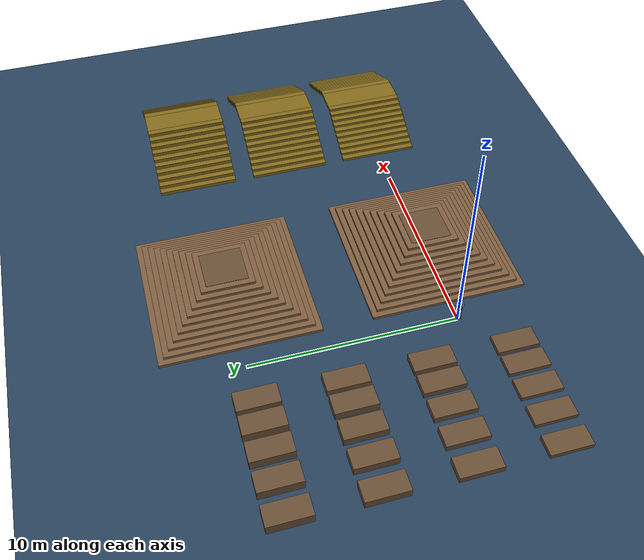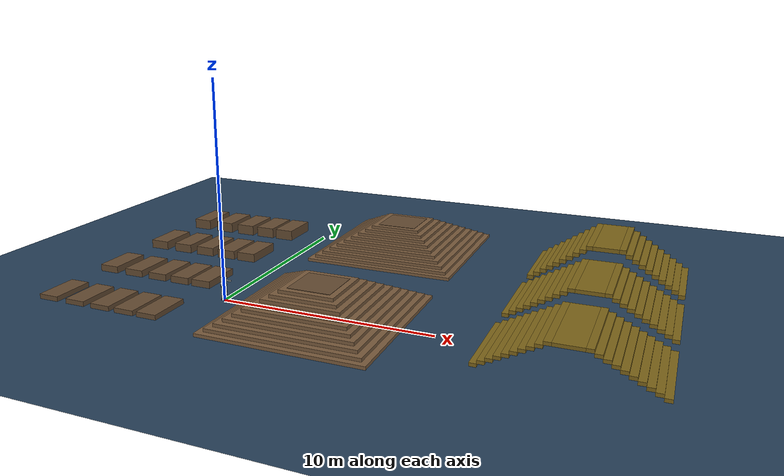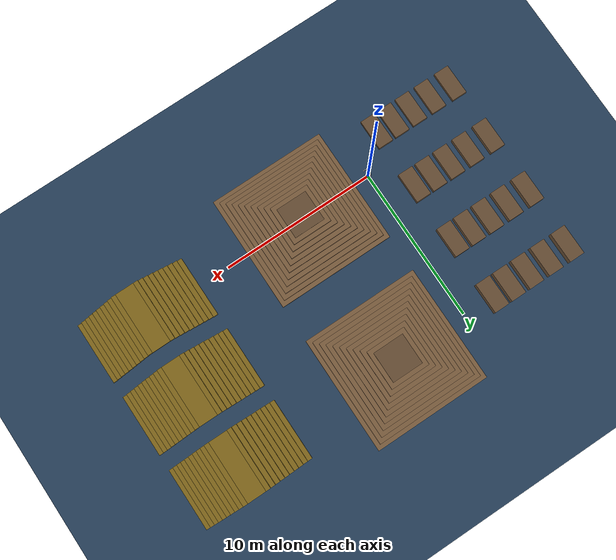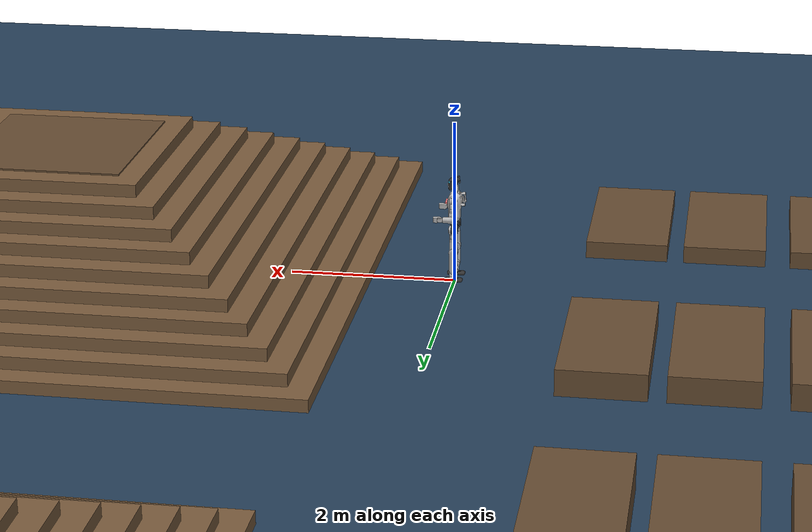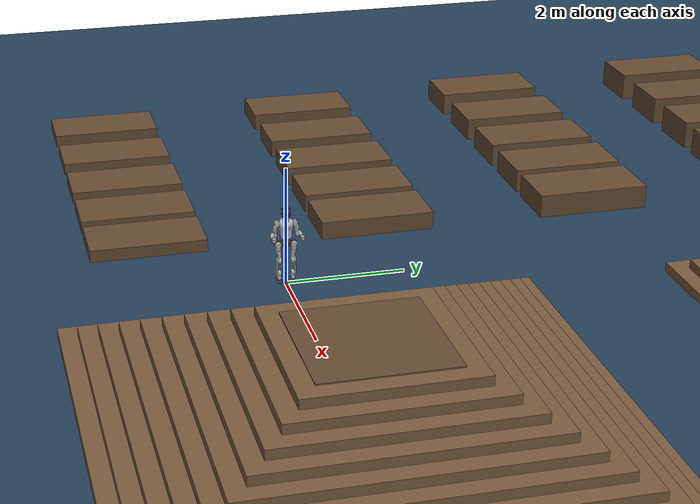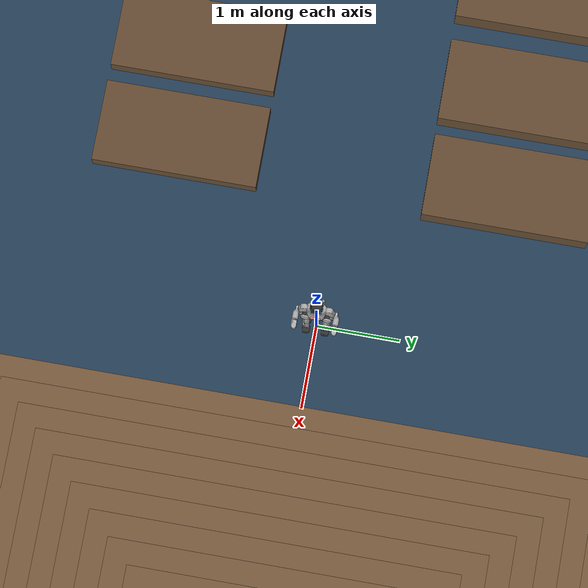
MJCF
<mujoco model="E1 12dof parkour scene">
  <include file="E1_12dof.xml"/>
  <include file="terrain.xml"/>

  <statistic center="0 0 0.8" extent="8"/>

  <visual>
    <headlight diffuse="0.85 0.85 0.85" ambient="0.55 0.55 0.55"
               specular="0.15 0.15 0.15"/>
    <rgba haze="0.55 0.65 0.75 1"/>
    <global azimuth="120" elevation="-20"/>
  </visual>

  <asset>
    <texture type="skybox" builtin="gradient" rgb1="0.65 0.78 0.95"
             rgb2="0.18 0.25 0.35"
             width="512" height="3072"/>
  </asset>

  <worldbody>
    <light name="sun" pos="0 -4 10" dir="0.25 0.15 -1"
           directional="true" castshadow="false"
           diffuse="0.9 0.9 0.9" ambient="0.0 0.0 0.0"
           specular="0.1 0.1 0.1"/>
  </worldbody>
</mujoco>

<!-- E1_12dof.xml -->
<mujoco model="E1_12dof">
  <compiler angle="radian" meshdir="../meshes/"/>

  <default>
    <default class="e1">
      <geom contype="0" conaffinity="0"/>
      <joint frictionloss="0.01" damping="0.01"/>

      <default class="hip">
        <default class="hip_pitch">
          <joint axis="0 1 0" range="-2.5307 2.8798" actuatorfrcrange="-120 120" armature="0.01"/>
        </default>
        <default class="hip_roll">
          <joint axis="1 0 0" actuatorfrcrange="-120 120" armature="0.01"/>
        </default>
        <default class="hip_yaw">
          <joint axis="0 0 1" range="-2.0944 2.0944" actuatorfrcrange="-36 36" armature="0.01"/>
        </default>
      </default>
      <default class="knee">
        <joint axis="0 1 0" range="0 2.2689" actuatorfrcrange="-120 120" armature="0.01"/>
      </default>
      <default class="ankle">
        <default class="ankle_pitch">
          <joint axis="0 1 0" range="-0.5236 0.5236" actuatorfrcrange="-36 36" armature="0.01"/>
        </default>
        <default class="ankle_roll">
          <joint axis="1 0 0" range="-1.5708 1.5708" actuatorfrcrange="-30 30" armature="0.01"/>
        </default>
      </default>
      <default class="visual">
        <geom group="2" type="mesh" density="0" material="silver"/>
      </default>
      <default class="collision">
        <geom group="3" type="mesh" rgba=".2 .6 .2 .3" contype="1" conaffinity="1"/>
        <default class="foot_capsule">
          <geom type="capsule" size="0.01"/>
        </default>
      </default>
    </default>
  </default>

  <asset>
    <material name="silver" rgba="0.7 0.7 0.7 1"/>
    <material name="black" rgba="0.2 0.2 0.2 1"/>

    <mesh name="pelvis" file="pelvis.STL"/>
    <mesh name="left_hip_pitch_link_v1" file="left_hip_pitch_link_v1.STL"/>
    <mesh name="left_hip_roll_link_v1" file="left_hip_roll_link_v1.STL"/>
    <mesh name="left_hip_yaw_link" file="left_hip_yaw_link.STL"/>
    <mesh name="left_knee_link" file="left_knee_link.STL"/>
    <mesh name="left_ankle_pitch_link" file="left_ankle_pitch_link.STL"/>
    <mesh name="left_ankle_roll_link_v1_2" file="left_ankle_roll_link_v1_2.STL"/>
    <mesh name="right_hip_pitch_link_v1" file="right_hip_pitch_link_v1.STL"/>
    <mesh name="right_hip_roll_link_v1" file="right_hip_roll_link_v1.STL"/>
    <mesh name="right_hip_yaw_link" file="right_hip_yaw_link.STL"/>
    <mesh name="right_knee_link" file="right_knee_link.STL"/>
    <mesh name="right_ankle_pitch_link" file="right_ankle_pitch_link.STL"/>
    <mesh name="right_ankle_roll_link_v1_2" file="right_ankle_roll_link_v1_2.STL"/>
    <mesh name="torso_link" file="torso_link.STL"/>
    <mesh name="left_shoulder_pitch_link" file="left_shoulder_pitch_link.STL"/>
    <mesh name="left_shoulder_roll_link" file="left_shoulder_roll_link.STL"/>
    <mesh name="left_shoulder_yaw_link" file="left_shoulder_yaw_link.STL"/>
    <mesh name="left_elbow_link" file="left_elbow_link.STL"/>
    <mesh name="left_wrist_roll_link" file="left_wrist_roll_link.STL"/>
    <mesh name="left_wrist_pitch_link" file="left_wrist_pitch_link.STL"/>
    <mesh name="right_shoulder_pitch_link" file="right_shoulder_pitch_link.STL"/>
    <mesh name="right_shoulder_roll_link" file="right_shoulder_roll_link.STL"/>
    <mesh name="right_shoulder_yaw_link" file="right_shoulder_yaw_link.STL"/>
    <mesh name="right_elbow_link" file="right_elbow_link.STL"/>
    <mesh name="right_wrist_roll_link" file="right_wrist_roll_link.STL"/>
    <mesh name="right_wrist_pitch_link" file="right_wrist_pitch_link.STL"/>
    <mesh name="head_pitch_link" file="head_pitch_link.STL"/>
    <mesh name="head_yaw_link" file="head_yaw_link.STL"/>
  </asset>

  <worldbody>
    <body name="pelvis" pos="0 0 0.715" childclass="e1">
      <inertial pos="-2.026e-05 0 0.0250193" quat="1 -1.77058e-05 -6.2652e-05 0.000906207" mass="3.6" diaginertia="0.0112704 0.00928407 0.00672158"/>
      <freejoint name="floating_base_joint"/>
      <geom class="visual" material="black" mesh="pelvis"/>
      <geom class="visual" mesh="pelvis"/>
      <!-- Primitive collision geometry keeps height-field contacts cheap and stable.
           Visual meshes and inertial properties remain unchanged. -->
      <geom name="pelvis_collision" class="collision" type="capsule" size="0.055" fromto="0 0 -0.005 0 0 0.065"/>
      <body name="left_hip_pitch_link" pos="0 0.0575 0">
        <inertial pos="-0.00088321 0.00557735 0.00140978" quat="0.775267 0.629946 -0.0078282 0.0454583" mass="1.334" diaginertia="0.00189368 0.00156703 0.00119457"/>
        <joint name="left_hip_pitch_joint" class="hip_pitch"/>
        <geom class="visual" material="black" mesh="left_hip_pitch_link_v1"/>
        <body name="left_hip_roll_link" pos="0 0.0725 -0.012">
          <inertial pos="-0.00054795 0.00928439 -0.070913" quat="0.72708 0.0123078 0.0971982 0.679526" mass="0.981" diaginertia="0.00140293 0.0012261 0.000954215"/>
          <joint name="left_hip_roll_joint" class="hip_roll" range="-0.5236 3.1416"/>
          <geom class="visual" mesh="left_hip_roll_link_v1"/>
          <geom name="left_hip_roll_collision" class="collision" type="capsule" size="0.045" fromto="0 0 -0.055 0 0 0.006"/>
          <body name="left_hip_yaw_link" pos="0 0 -0.106">
            <inertial pos="-8.81e-06 -0.00845833 -0.163113" quat="0.707299 -0.00656895 0.00682479 0.706851" mass="1.56" diaginertia="0.00493085 0.00429472 0.00135114"/>
            <joint name="left_hip_yaw_joint" class="hip_yaw"/>
            <geom class="visual" mesh="left_hip_yaw_link"/>
            <geom name="left_thigh_collision" class="collision" type="capsule" size="0.050" fromto="0 0 -0.187 0 0 -0.042"/>
            <body name="left_knee_link" pos="0 0 -0.182">
              <inertial pos="-0.00054127 0.020434 -0.100513" quat="0.710429 -0.000848428 0.00238427 0.703764" mass="0.389" diaginertia="0.00417321 0.00390613 0.000296172"/>
              <joint name="left_knee_joint" class="knee"/>
              <geom class="visual" mesh="left_knee_link"/>
              <geom name="left_shank_collision" class="collision" type="capsule" size="0.045" fromto="0 0 -0.225 0 0 0.003"/>
              <body name="left_ankle_pitch_link" pos="0 0 -0.23">
                <inertial pos="0.00011592 -0.00958151 -0.0284272" quat="0.705154 0.0494053 -0.049277 0.705612" mass="1.333" diaginertia="0.00253878 0.00227413 0.000815969"/>
                <joint name="left_ankle_pitch_joint" class="ankle_pitch"/>
                <geom class="visual" mesh="left_ankle_pitch_link"/>
                <body name="left_ankle_roll_link" pos="0 -0.016 -0.07">
                  <inertial pos="-0.00176848 0 -0.0465728" quat="0 0.706212 0 0.708" mass="0.578" diaginertia="0.0023466 0.00219847 0.000444688"/>
                  <joint name="left_ankle_roll_joint" class="ankle_roll"/>
                  <site name="left_foot_height_scan" pos="0 0 0" size="0.005" rgba="0 0 0 0"/>
                  <geom class="visual" material="black" mesh="left_ankle_roll_link_v1_2"/>
                  <geom name="left_foot1_collision" class="foot_capsule" fromto="-0.097 -0.037 -0.0578 0.097 -0.037 -0.0578"/>
                  <geom name="left_foot2_collision" class="foot_capsule" fromto="-0.097 -0.025 -0.0578 0.097 -0.025 -0.0578"/>
                  <geom name="left_foot3_collision" class="foot_capsule" fromto="-0.097 -0.0125 -0.0578 0.097 -0.0125 -0.0578"/>
                  <geom name="left_foot4_collision" class="foot_capsule" fromto="-0.097 0 -0.0578 0.097 0 -0.0578"/>
                  <geom name="left_foot5_collision" class="foot_capsule" fromto="-0.097 0.0125 -0.0578 0.097 0.0125 -0.0578"/>
                  <geom name="left_foot6_collision" class="foot_capsule" fromto="-0.097 0.025 -0.0578 0.097 0.025 -0.0578"/>
                  <geom name="left_foot7_collision" class="foot_capsule" fromto="-0.097 0.037 -0.0578 0.097 0.037 -0.0578"/>
                </body>
              </body>
            </body>
          </body>
        </body>
      </body>
      <body name="right_hip_pitch_link" pos="0 -0.0575 0">
        <inertial pos="-0.00088321 -0.00557735 0.00140978" quat="0.629946 0.775267 -0.0454583 0.0078282" mass="1.334" diaginertia="0.00189368 0.00156703 0.00119457"/>
        <joint name="right_hip_pitch_joint" class="hip_pitch"/>
        <geom class="visual" material="black" mesh="right_hip_pitch_link_v1"/>
        <body name="right_hip_roll_link" pos="0 -0.0725 -0.012">
          <inertial pos="-0.00054795 -0.00928439 -0.070913" quat="0.679526 0.0971982 0.0123078 0.72708" mass="0.981" diaginertia="0.00140293 0.0012261 0.000954215"/>
          <joint name="right_hip_roll_joint" class="hip_roll" range="-3.1416 0.5236"/>
          <geom class="visual" mesh="right_hip_roll_link_v1"/>
          <geom name="right_hip_roll_collision" class="collision" type="capsule" size="0.045" fromto="0 0 -0.055 0 0 0.006"/>
          <body name="right_hip_yaw_link" pos="0 0 -0.106">
            <inertial pos="8.81e-06 0.00845833 -0.163113" quat="0.707267 0.00689281 -0.00650074 0.706883" mass="1.561" diaginertia="0.00493085 0.00429472 0.00135113"/>
            <joint name="right_hip_yaw_joint" class="hip_yaw"/>
            <geom class="visual" mesh="right_hip_yaw_link"/>
            <geom name="right_thigh_collision" class="collision" type="capsule" size="0.050" fromto="0 0 -0.187 0 0 -0.042"/>
            <body name="right_knee_link" pos="0 0 -0.182">
              <inertial pos="-0.00054256 -0.020434 -0.100513" quat="0.703753 0.00255437 -0.000679727 0.71044" mass="0.389" diaginertia="0.00417321 0.00390614 0.000296163"/>
              <joint name="right_knee_joint" class="knee"/>
              <geom class="visual" mesh="right_knee_link"/>
              <geom name="right_shank_collision" class="collision" type="capsule" size="0.045" fromto="0 0 -0.225 0 0 0.003"/>
              <body name="right_ankle_pitch_link" pos="0 0 -0.23">
                <inertial pos="0.00011592 0.00956002 -0.0284576" quat="0.706733 -0.0493233 0.0493065 0.704035" mass="1.333" diaginertia="0.0025364 0.00227145 0.000815675"/>
                <joint name="right_ankle_pitch_joint" class="ankle_pitch"/>
                <geom class="visual" mesh="right_ankle_pitch_link"/>
                <body name="right_ankle_roll_link" pos="0 0.016 -0.07">
                  <inertial pos="-0.00176848 0 -0.0465753" quat="0 0.706212 0 0.708" mass="0.578" diaginertia="0.0023466 0.00219847 0.000444688"/>
                  <joint name="right_ankle_roll_joint" class="ankle_roll"/>
                  <site name="right_foot_height_scan" pos="0 0 0" size="0.005" rgba="0 0 0 0"/>
                  <geom class="visual" material="black" mesh="right_ankle_roll_link_v1_2"/>
                  <geom name="right_foot1_collision" class="foot_capsule" fromto="-0.097 -0.037 -0.0578 0.097 -0.037 -0.0578"/>
                  <geom name="right_foot2_collision" class="foot_capsule" fromto="-0.097 -0.025 -0.0578 0.097 -0.025 -0.0578"/>
                  <geom name="right_foot3_collision" class="foot_capsule" fromto="-0.097 -0.0125 -0.0578 0.097 -0.0125 -0.0578"/>
                  <geom name="right_foot4_collision" class="foot_capsule" fromto="-0.097 0 -0.0578 0.097 0 -0.0578"/>
                  <geom name="right_foot5_collision" class="foot_capsule" fromto="-0.097 0.0125 -0.0578 0.097 0.0125 -0.0578"/>
                  <geom name="right_foot6_collision" class="foot_capsule" fromto="-0.097 0.025 -0.0578 0.097 0.025 -0.0578"/>
                  <geom name="right_foot7_collision" class="foot_capsule" fromto="-0.097 0.037 -0.0578 0.097 0.037 -0.0578"/>
                </body>
              </body>
            </body>
          </body>
        </body>
      </body>
      <body name="torso_link" pos="0 0 0.12">
        <inertial pos="0.00939865 -0.00010371 0.142031" quat="0.998895 0.000719594 0.047 0.000291884" mass="5.45" diaginertia="0.0520713 0.039092 0.0193737"/>
        <site name="imu_in_torso" size="0.01" pos="0 0 0" rgba="0 0 0 0"/>
        <geom class="visual" mesh="torso_link"/>
        <geom name="torso_lower_collision" class="collision" type="capsule" size="0.075" fromto="0 -0.030 0.065 0 0.030 0.065"/>
        <geom name="torso_upper_collision" class="collision" type="capsule" size="0.090" fromto="-0.020 -0.019 0.220 -0.020 0.019 0.220"/>
        <!-- Torso origin is 0.12 m above pelvis.  This local pose preserves
             the former pelvis-relative camera pose (0.09, 0.0, 0.30). -->
        <camera name="depth_cam" pos="0.090 0.0 0.18" xyaxes="0 -1 0  0.940 0 0.342" fovy="58" resolution="64 36"/>
        <geom name="depth_cam_vis" pos="0.090 0.0 0.18" quat="0.6964 0.1228 -0.1228 -0.6964" size="0.06 0.02 0.01" rgba="1.0 0.5 0.5 1" type="box" group="2" contype="0" conaffinity="0"/>
        <camera name="head_cam" pos="0.04879887 0.00000000 0.43780299"
                xyaxes="0 -1 0  0.70710678 0 0.70710678"
                fovy="58.29" resolution="64 36"/>
        <geom name="head_cam_vis" pos="0.04879887 0.00000000 0.43780299"
              quat="0.65328148 0.27059805 -0.27059805 -0.65328148"
              size="0.06 0.02 0.01" rgba="0.25 0.85 1.0 1"
              type="box" group="2" contype="0" conaffinity="0"/>
        <body name="left_shoulder_pitch_link" pos="0 0.109 0.23">
          <inertial pos="0.0002164 0.0326152 7.9e-06" quat="0.705969 0.707947 -0.0128594 -0.015888" mass="0.764" diaginertia="0.000639277 0.000540109 0.000448694"/>
          <geom class="visual" mesh="left_shoulder_pitch_link"/>
          <body name="left_shoulder_roll_link" pos="0 0.036 0">
            <inertial pos="0.0091122 0.017234 -0.042207" quat="0.964204 0.187993 0.182061 0.0426904" mass="0.5" diaginertia="0.000780092 0.000718395 0.000287923"/>
            <geom class="visual" mesh="left_shoulder_roll_link"/>
            <body name="left_shoulder_yaw_link" pos="0 0.03235 -0.091754" quat="0.991445 0.130526 0 0">
              <inertial pos="-3.07e-06 -0.0105563 -0.100188" quat="0.707013 0.0205321 -0.0204544 0.706606" mass="0.909" diaginertia="0.00125616 0.00114044 0.000561167"/>
              <geom class="visual" mesh="left_shoulder_yaw_link"/>
              <geom name="left_upper_arm_collision" class="collision" type="capsule" size="0.040" fromto="0 0 -0.112 0 0 -0.027"/>
              <body name="left_elbow_link" pos="0 0.016368 -0.11645" quat="0.991445 -0.130526 0 0">
                <inertial pos="0.0734429 0.0108741 -2.677e-05" quat="0.520428 0.521868 0.477567 0.478266" mass="0.525" diaginertia="0.000525457 0.00049276 0.000235073"/>
                <geom class="visual" mesh="left_elbow_link"/>
                <geom name="left_forearm_collision" class="collision" type="capsule" size="0.035" fromto="-0.005 0 0 0.070 0 0"/>
                <body name="left_wrist_roll_link" pos="0.1 0.0117 0">
                  <geom class="visual" mesh="left_wrist_roll_link"/>
                  <geom name="left_wrist_roll_collision" class="collision" type="capsule" size="0.024" fromto="0.024 0 0 0.053 0 0"/>
                  <body name="left_wrist_pitch_link" pos="0.053 0 0">
                    <inertial pos="0.0225121 -0.00014957 -0.0006746" quat="0.621742 0.351469 0.601172 0.358467" mass="0.575" diaginertia="0.000487596 0.000487332 0.000193483"/>
                    <geom class="visual" mesh="left_wrist_pitch_link"/>
                    <geom name="left_hand_collision" class="collision" type="capsule" size="0.030" fromto="0 0 0 0.045 0 0"/>
                  </body>
                </body>
              </body>
            </body>
          </body>
        </body>
        <body name="right_shoulder_pitch_link" pos="0 -0.109 0.23">
          <inertial pos="0.0002164 -0.0326133 4.54e-06" quat="0.708239 0.705683 0.0154121 0.013133" mass="0.764" diaginertia="0.000639261 0.00053997 0.000448819"/>
          <geom class="visual" mesh="right_shoulder_pitch_link"/>
          <body name="right_shoulder_roll_link" pos="0 -0.036 0">
            <inertial pos="0.0091121 -0.017234 -0.042207" quat="0.964204 -0.187995 0.18206 -0.0426971" mass="0.5" diaginertia="0.000780102 0.000718405 0.000287933"/>
            <geom class="visual" mesh="right_shoulder_roll_link"/>
            <body name="right_shoulder_yaw_link" pos="0 -0.03235 -0.091754" quat="0.991445 -0.130526 0 0">
              <inertial pos="0 0.0105679 -0.100231" quat="0.706633 -0.0209942 0.0209465 0.706959" mass="0.91" diaginertia="0.0012565 0.00114115 0.000561537"/>
              <geom class="visual" mesh="right_shoulder_yaw_link"/>
              <geom name="right_upper_arm_collision" class="collision" type="capsule" size="0.040" fromto="0 0 -0.112 0 0 -0.027"/>
              <body name="right_elbow_link" pos="0 -0.016368 -0.11645" quat="0.991445 0.130526 0 0">
                <inertial pos="0.00023724 -2.499e-05 2.678e-05" quat="0.477567 0.478266 0.520428 0.521868" mass="0.525" diaginertia="0.000525457 0.00049276 0.000235073"/>
                <geom class="visual" mesh="right_elbow_link"/>
                <geom name="right_forearm_collision" class="collision" type="capsule" size="0.035" fromto="-0.005 0 0 0.070 0 0"/>
                <body name="right_wrist_roll_link" pos="0.1 -0.0117 0">
                  <geom class="visual" mesh="right_wrist_roll_link"/>
                  <geom name="right_wrist_roll_collision" class="collision" type="capsule" size="0.024" fromto="0.024 0 0 0.053 0 0"/>
                  <body name="right_wrist_pitch_link" pos="0.053 0 0">
                    <inertial pos="0.0224977 0.00014957 -0.00067803" quat="0.424067 0.559328 0.415264 0.578684" mass="0.575" diaginertia="0.000487178 0.000486987 0.000193495"/>
                    <geom class="visual" mesh="right_wrist_pitch_link"/>
                    <geom name="right_hand_collision" class="collision" type="capsule" size="0.030" fromto="0 0 0 0.045 0 0"/>
                  </body>
                </body>
              </body>
            </body>
          </body>
        </body>
        <body name="head_pitch_link" pos="0 0 0.295">
          <inertial pos="-0.0065914 0 0.042173" quat="0.997131 0 -0.0756995 0" mass="0.5" diaginertia="0.000552284 0.00052758 0.000205916"/>
          <geom class="visual" mesh="head_pitch_link"/>
          <geom name="neck_collision" class="collision" type="capsule" size="0.035" fromto="-0.010 0 0.010 -0.010 0 0.060"/>
          <body name="head_yaw_link" pos="-0.01 0 0.095">
            <inertial pos="0.042627 -1.307e-06 0.027428" quat="0.980498 -0.000152354 -0.19653 8.28251e-05" mass="0.6" diaginertia="0.000933823 0.00073769 0.000559467"/>
            <geom class="visual" material="black" mesh="head_yaw_link"/>
            <geom name="head_collision" class="collision" type="capsule" size="0.070" fromto="0.017 0 0.014 0.017 0 0.028"/>
          </body>
        </body>
      </body>
    </body>
  </worldbody>

  <contact>
    <pair name="left_foot1_floor" geom1="left_foot1_collision" geom2="floor" solref="0.01 1" friction="0.8 0.8"/>
    <pair name="left_foot2_floor" geom1="left_foot2_collision" geom2="floor" solref="0.01 1" friction="0.8 0.8"/>
    <pair name="left_foot3_floor" geom1="left_foot3_collision" geom2="floor" solref="0.01 1" friction="0.8 0.8"/>
    <pair name="left_foot4_floor" geom1="left_foot4_collision" geom2="floor" solref="0.01 1" friction="0.8 0.8"/>
    <pair name="left_foot5_floor" geom1="left_foot5_collision" geom2="floor" solref="0.01 1" friction="0.8 0.8"/>
    <pair name="left_foot6_floor" geom1="left_foot6_collision" geom2="floor" solref="0.01 1" friction="0.8 0.8"/>
    <pair name="left_foot7_floor" geom1="left_foot7_collision" geom2="floor" solref="0.01 1" friction="0.8 0.8"/>
    <pair name="right_foot1_floor" geom1="right_foot1_collision" geom2="floor" solref="0.01 1" friction="0.8 0.8"/>
    <pair name="right_foot2_floor" geom1="right_foot2_collision" geom2="floor" solref="0.01 1" friction="0.8 0.8"/>
    <pair name="right_foot3_floor" geom1="right_foot3_collision" geom2="floor" solref="0.01 1" friction="0.8 0.8"/>
    <pair name="right_foot4_floor" geom1="right_foot4_collision" geom2="floor" solref="0.01 1" friction="0.8 0.8"/>
    <pair name="right_foot5_floor" geom1="right_foot5_collision" geom2="floor" solref="0.01 1" friction="0.8 0.8"/>
    <pair name="right_foot6_floor" geom1="right_foot6_collision" geom2="floor" solref="0.01 1" friction="0.8 0.8"/>
    <pair name="right_foot7_floor" geom1="right_foot7_collision" geom2="floor" solref="0.01 1" friction="0.8 0.8"/>
  </contact>

  <actuator>
    <!-- LEFT LEG -->
    <motor name="left_hip_pitch"  joint="left_hip_pitch_joint"  gear="1" ctrllimited="true" ctrlrange="-120 120"/>
    <motor name="left_hip_roll"   joint="left_hip_roll_joint"   gear="1" ctrllimited="true" ctrlrange="-120 120"/>
    <motor name="left_hip_yaw"    joint="left_hip_yaw_joint"    gear="1" ctrllimited="true" ctrlrange="-36 36"/>
    <motor name="left_knee"       joint="left_knee_joint"       gear="1" ctrllimited="true" ctrlrange="-120 120"/>
    <motor name="left_ankle_pitch" joint="left_ankle_pitch_joint" gear="1" ctrllimited="true" ctrlrange="-36 36"/>
    <motor name="left_ankle_roll"  joint="left_ankle_roll_joint"  gear="1" ctrllimited="true" ctrlrange="-30 30"/>
    <!-- RIGHT LEG -->
    <motor name="right_hip_pitch"  joint="right_hip_pitch_joint"  gear="1" ctrllimited="true" ctrlrange="-120 120"/>
    <motor name="right_hip_roll"   joint="right_hip_roll_joint"   gear="1" ctrllimited="true" ctrlrange="-120 120"/>
    <motor name="right_hip_yaw"    joint="right_hip_yaw_joint"    gear="1" ctrllimited="true" ctrlrange="-36 36"/>
    <motor name="right_knee"       joint="right_knee_joint"       gear="1" ctrllimited="true" ctrlrange="-120 120"/>
    <motor name="right_ankle_pitch" joint="right_ankle_pitch_joint" gear="1" ctrllimited="true" ctrlrange="-36 36"/>
    <motor name="right_ankle_roll"  joint="right_ankle_roll_joint"  gear="1" ctrllimited="true" ctrlrange="-30 30"/>
  </actuator>

  <sensor>
    <!-- Joint position sensors -->
    <jointpos name="left_hip_pitch_pos" joint="left_hip_pitch_joint"/>
    <jointpos name="left_hip_roll_pos" joint="left_hip_roll_joint"/>
    <jointpos name="left_hip_yaw_pos" joint="left_hip_yaw_joint"/>
    <jointpos name="left_knee_pos" joint="left_knee_joint"/>
    <jointpos name="left_ankle_pitch_pos" joint="left_ankle_pitch_joint"/>
    <jointpos name="left_ankle_roll_pos" joint="left_ankle_roll_joint"/>
    <jointpos name="right_hip_pitch_pos" joint="right_hip_pitch_joint"/>
    <jointpos name="right_hip_roll_pos" joint="right_hip_roll_joint"/>
    <jointpos name="right_hip_yaw_pos" joint="right_hip_yaw_joint"/>
    <jointpos name="right_knee_pos" joint="right_knee_joint"/>
    <jointpos name="right_ankle_pitch_pos" joint="right_ankle_pitch_joint"/>
    <jointpos name="right_ankle_roll_pos" joint="right_ankle_roll_joint"/>
    <!-- Joint velocity sensors -->
    <jointvel name="left_hip_pitch_vel" joint="left_hip_pitch_joint"/>
    <jointvel name="left_hip_roll_vel" joint="left_hip_roll_joint"/>
    <jointvel name="left_hip_yaw_vel" joint="left_hip_yaw_joint"/>
    <jointvel name="left_knee_vel" joint="left_knee_joint"/>
    <jointvel name="left_ankle_pitch_vel" joint="left_ankle_pitch_joint"/>
    <jointvel name="left_ankle_roll_vel" joint="left_ankle_roll_joint"/>
    <jointvel name="right_hip_pitch_vel" joint="right_hip_pitch_joint"/>
    <jointvel name="right_hip_roll_vel" joint="right_hip_roll_joint"/>
    <jointvel name="right_hip_yaw_vel" joint="right_hip_yaw_joint"/>
    <jointvel name="right_knee_vel" joint="right_knee_joint"/>
    <jointvel name="right_ankle_pitch_vel" joint="right_ankle_pitch_joint"/>
    <jointvel name="right_ankle_roll_vel" joint="right_ankle_roll_joint"/>
    <!-- Actuator torque sensors -->
    <actuatorfrc name="left_hip_pitch_torque" actuator="left_hip_pitch"/>
    <actuatorfrc name="left_hip_roll_torque" actuator="left_hip_roll"/>
    <actuatorfrc name="left_hip_yaw_torque" actuator="left_hip_yaw"/>
    <actuatorfrc name="left_knee_torque" actuator="left_knee"/>
    <actuatorfrc name="left_ankle_pitch_torque" actuator="left_ankle_pitch"/>
    <actuatorfrc name="left_ankle_roll_torque" actuator="left_ankle_roll"/>
    <actuatorfrc name="right_hip_pitch_torque" actuator="right_hip_pitch"/>
    <actuatorfrc name="right_hip_roll_torque" actuator="right_hip_roll"/>
    <actuatorfrc name="right_hip_yaw_torque" actuator="right_hip_yaw"/>
    <actuatorfrc name="right_knee_torque" actuator="right_knee"/>
    <actuatorfrc name="right_ankle_pitch_torque" actuator="right_ankle_pitch"/>
    <actuatorfrc name="right_ankle_roll_torque" actuator="right_ankle_roll"/>

    <framequat name="orientation" objtype="site" noise="0.001" objname="imu_in_torso"/>
    <framepos name="position" objtype="site" noise="0.001" objname="imu_in_torso"/>
    <!-- Compatibility IMU names used by sim2sim_e1_21dof_amp_hybrid.py. -->
    <framezaxis name="imu_upvector" objtype="body" objname="world" reftype="site" refname="imu_in_torso"/>
    <velocimeter name="imu_lin_vel" site="imu_in_torso"/>
    <gyro name="imu_ang_vel" cutoff="34.9" noise="0.005" site="imu_in_torso"/>
    <!-- New descriptive alias retained for tools that use the V3 name. -->
    <gyro name="angular-velocity" cutoff="34.9" noise="0.005" site="imu_in_torso"/>
  </sensor>

  <visual>
    <headlight diffuse="0.6 0.6 0.6" ambient="0.3 0.3 0.3" specular="0 0 0"/>
    <rgba haze="0.15 0.25 0.35 1"/>
    <global azimuth="120" elevation="-20"/>
  </visual>

  <asset>
    <texture type="skybox" builtin="gradient" rgb1="0.3 0.5 0.7" rgb2="0 0 0" width="512" height="3072"/>
    <texture type="2d" name="groundplane" builtin="checker" mark="edge" rgb1="0.2 0.3 0.4" rgb2="0.1 0.2 0.3"
             markrgb="0.8 0.8 0.8" width="300" height="300"/>
    <material name="groundplane" texture="groundplane" texuniform="true" texrepeat="5 5" reflectance="0.2"/>
  </asset>

  <worldbody>
    <light pos="0 0 1.5" dir="0 0 -1" directional="true"/>
    <geom name="floor" size="0 0 0.01" type="plane" material="groundplane" conaffinity="1"/>
  </worldbody>
</mujoco>

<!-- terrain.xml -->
<mujoco>
<worldbody>

  <!-- ===== Pyramid 15cm ===== -->
  <body name="pyramid_15cm" pos="0 0 0">
    <geom type="box" pos="4.80 0 0.075" size="3.80 3.80 0.075" rgba="0.48 0.36 0.24 1" contype="1" conaffinity="1" friction="0.8 0.8"/>
    <geom type="box" pos="4.80 0 0.150" size="3.52 3.52 0.150" rgba="0.48 0.36 0.24 1" contype="1" conaffinity="1" friction="0.8 0.8"/>
    <geom type="box" pos="4.80 0 0.225" size="3.24 3.24 0.225" rgba="0.48 0.36 0.24 1" contype="1" conaffinity="1" friction="0.8 0.8"/>
    <geom type="box" pos="4.80 0 0.300" size="2.96 2.96 0.300" rgba="0.48 0.36 0.24 1" contype="1" conaffinity="1" friction="0.8 0.8"/>
    <geom type="box" pos="4.80 0 0.375" size="2.68 2.68 0.375" rgba="0.48 0.36 0.24 1" contype="1" conaffinity="1" friction="0.8 0.8"/>
    <geom type="box" pos="4.80 0 0.450" size="2.40 2.40 0.450" rgba="0.48 0.36 0.24 1" contype="1" conaffinity="1" friction="0.8 0.8"/>
    <geom type="box" pos="4.80 0 0.525" size="2.12 2.12 0.525" rgba="0.48 0.36 0.24 1" contype="1" conaffinity="1" friction="0.8 0.8"/>
    <geom type="box" pos="4.80 0 0.600" size="1.84 1.84 0.600" rgba="0.48 0.36 0.24 1" contype="1" conaffinity="1" friction="0.8 0.8"/>
    <geom type="box" pos="4.80 0 0.675" size="1.56 1.56 0.675" rgba="0.48 0.36 0.24 1" contype="1" conaffinity="1" friction="0.8 0.8"/>
    <geom type="box" pos="4.80 0 0.750" size="1.28 1.28 0.750" rgba="0.48 0.36 0.24 1" contype="1" conaffinity="1" friction="0.8 0.8"/>
    <geom type="box" pos="4.80 0 1.51" size="1.00 1.00 0.01" rgba="0.40 0.30 0.20 1" contype="1" conaffinity="1" friction="0.8 0.8"/>
  </body>

  <body name="pyramid_20cm" pos="0 10 0">
    <geom type="box" pos="4.80 0 0.075" size="3.80 3.80 0.075" rgba="0.48 0.36 0.24 1" contype="1" conaffinity="1" friction="0.8 0.8"/>
    <geom type="box" pos="4.80 0 0.150" size="3.52 3.52 0.150" rgba="0.48 0.36 0.24 1" contype="1" conaffinity="1" friction="0.8 0.8"/>
    <geom type="box" pos="4.80 0 0.225" size="3.24 3.24 0.225" rgba="0.48 0.36 0.24 1" contype="1" conaffinity="1" friction="0.8 0.8"/>
    <geom type="box" pos="4.80 0 0.300" size="2.96 2.96 0.300" rgba="0.48 0.36 0.24 1" contype="1" conaffinity="1" friction="0.8 0.8"/>
    <geom type="box" pos="4.80 0 0.375" size="2.68 2.68 0.375" rgba="0.48 0.36 0.24 1" contype="1" conaffinity="1" friction="0.8 0.8"/>
    <geom type="box" pos="4.80 0 0.450" size="2.40 2.40 0.450" rgba="0.48 0.36 0.24 1" contype="1" conaffinity="1" friction="0.8 0.8"/>
    <geom type="box" pos="4.80 0 0.525" size="2.12 2.12 0.525" rgba="0.48 0.36 0.24 1" contype="1" conaffinity="1" friction="0.8 0.8"/>
    <geom type="box" pos="4.80 0 0.600" size="1.84 1.84 0.600" rgba="0.48 0.36 0.24 1" contype="1" conaffinity="1" friction="0.8 0.8"/>
    <geom type="box" pos="4.80 0 0.675" size="1.56 1.56 0.675" rgba="0.48 0.36 0.24 1" contype="1" conaffinity="1" friction="0.8 0.8"/>
    <geom type="box" pos="4.80 0 0.750" size="1.28 1.28 0.750" rgba="0.48 0.36 0.24 1" contype="1" conaffinity="1" friction="0.8 0.8"/>
    <geom type="box" pos="4.80 0 1.51" size="1.00 1.00 0.01" rgba="0.40 0.30 0.20 1" contype="1" conaffinity="1" friction="0.8 0.8"/>
  </body>

  <!-- 15cm -->
  <body name="stairs_15cm" pos="10 0 0">
    <geom pos="2.15 0 0.075" type="box" size="0.15 2 0.075" rgba="0.50 0.40 0.10 1" quat="1 0 0 0"/>
    <geom pos="2.45 0 0.225" type="box" size="0.15 2 0.075" rgba="0.50 0.40 0.10 1" quat="1 0 0 0"/>
    <geom pos="2.75 0 0.375" type="box" size="0.15 2 0.075" rgba="0.50 0.40 0.10 1" quat="1 0 0 0"/>
    <geom pos="3.05 0 0.525" type="box" size="0.15 2 0.075" rgba="0.50 0.40 0.10 1" quat="1 0 0 0"/>
    <geom pos="3.35 0 0.675" type="box" size="0.15 2 0.075" rgba="0.50 0.40 0.10 1" quat="1 0 0 0"/>
    <geom pos="3.65 0 0.825" type="box" size="0.15 2 0.075" rgba="0.50 0.40 0.10 1" quat="1 0 0 0"/>
    <geom pos="3.95 0 0.975" type="box" size="0.15 2 0.075" rgba="0.50 0.40 0.10 1" quat="1 0 0 0"/>
    <geom pos="4.25 0 1.125" type="box" size="0.15 2 0.075" rgba="0.50 0.40 0.10 1" quat="1 0 0 0"/>
    <geom pos="4.55 0 1.275" type="box" size="0.15 2 0.075" rgba="0.50 0.40 0.10 1" quat="1 0 0 0"/>
    <geom pos="4.85 0 1.425" type="box" size="0.15 2 0.075" rgba="0.50 0.40 0.10 1" quat="1 0 0 0"/>

    <geom pos="5.6 0 1.425" type="box" size="0.6 2 0.075" rgba="0.50 0.40 0.10 1" quat="1 0 0 0"/>

    <geom pos="6.35 0 1.425" type="box" size="0.15 2 0.075" rgba="0.50 0.40 0.10 1" quat="1 0 0 0"/>
    <geom pos="6.65 0 1.275" type="box" size="0.15 2 0.075" rgba="0.50 0.40 0.10 1" quat="1 0 0 0"/>
    <geom pos="6.95 0 1.125" type="box" size="0.15 2 0.075" rgba="0.50 0.40 0.10 1" quat="1 0 0 0"/>
    <geom pos="7.25 0 0.975" type="box" size="0.15 2 0.075" rgba="0.50 0.40 0.10 1" quat="1 0 0 0"/>
    <geom pos="7.55 0 0.825" type="box" size="0.15 2 0.075" rgba="0.50 0.40 0.10 1" quat="1 0 0 0"/>
    <geom pos="7.85 0 0.675" type="box" size="0.15 2 0.075" rgba="0.50 0.40 0.10 1" quat="1 0 0 0"/>
    <geom pos="8.15 0 0.525" type="box" size="0.15 2 0.075" rgba="0.50 0.40 0.10 1" quat="1 0 0 0"/>
    <geom pos="8.45 0 0.375" type="box" size="0.15 2 0.075" rgba="0.50 0.40 0.10 1" quat="1 0 0 0"/>
    <geom pos="8.75 0 0.225" type="box" size="0.15 2 0.075" rgba="0.50 0.40 0.10 1" quat="1 0 0 0"/>
    <geom pos="9.05 0 0.075" type="box" size="0.15 2 0.075" rgba="0.50 0.40 0.10 1" quat="1 0 0 0"/>
  </body>

  <!-- 17cm  -->
  <body name="stairs_17cm" pos="10 5 0">
    <geom pos="2.15 0 0.085" type="box" size="0.15 2 0.085" rgba="0.50 0.40 0.10 1" quat="1 0 0 0"/>
    <geom pos="2.45 0 0.255" type="box" size="0.15 2 0.085" rgba="0.50 0.40 0.10 1" quat="1 0 0 0"/>
    <geom pos="2.75 0 0.425" type="box" size="0.15 2 0.085" rgba="0.50 0.40 0.10 1" quat="1 0 0 0"/>
    <geom pos="3.05 0 0.595" type="box" size="0.15 2 0.085" rgba="0.50 0.40 0.10 1" quat="1 0 0 0"/>
    <geom pos="3.35 0 0.765" type="box" size="0.15 2 0.085" rgba="0.50 0.40 0.10 1" quat="1 0 0 0"/>
    <geom pos="3.65 0 0.935" type="box" size="0.15 2 0.085" rgba="0.50 0.40 0.10 1" quat="1 0 0 0"/>
    <geom pos="3.95 0 1.105" type="box" size="0.15 2 0.085" rgba="0.50 0.40 0.10 1" quat="1 0 0 0"/>
    <geom pos="4.25 0 1.275" type="box" size="0.15 2 0.085" rgba="0.50 0.40 0.10 1" quat="1 0 0 0"/>
    <geom pos="4.55 0 1.445" type="box" size="0.15 2 0.085" rgba="0.50 0.40 0.10 1" quat="1 0 0 0"/>
    <geom pos="4.85 0 1.615" type="box" size="0.15 2 0.085" rgba="0.50 0.40 0.10 1" quat="1 0 0 0"/>

    <geom pos="5.6 0 1.615" type="box" size="0.6 2 0.085" rgba="0.50 0.40 0.10 1" quat="1 0 0 0"/>

    <geom pos="6.35 0 1.615" type="box" size="0.15 2 0.085" rgba="0.50 0.40 0.10 1" quat="1 0 0 0"/>
    <geom pos="6.65 0 1.445" type="box" size="0.15 2 0.085" rgba="0.50 0.40 0.10 1" quat="1 0 0 0"/>
    <geom pos="6.95 0 1.275" type="box" size="0.15 2 0.085" rgba="0.50 0.40 0.10 1" quat="1 0 0 0"/>
    <geom pos="7.25 0 1.105" type="box" size="0.15 2 0.085" rgba="0.50 0.40 0.10 1" quat="1 0 0 0"/>
    <geom pos="7.55 0 0.935" type="box" size="0.15 2 0.085" rgba="0.50 0.40 0.10 1" quat="1 0 0 0"/>
    <geom pos="7.85 0 0.765" type="box" size="0.15 2 0.085" rgba="0.50 0.40 0.10 1" quat="1 0 0 0"/>
    <geom pos="8.15 0 0.595" type="box" size="0.15 2 0.085" rgba="0.50 0.40 0.10 1" quat="1 0 0 0"/>
    <geom pos="8.45 0 0.425" type="box" size="0.15 2 0.085" rgba="0.50 0.40 0.10 1" quat="1 0 0 0"/>
    <geom pos="8.75 0 0.255" type="box" size="0.15 2 0.085" rgba="0.50 0.40 0.10 1" quat="1 0 0 0"/>
    <geom pos="9.05 0 0.085" type="box" size="0.15 2 0.085" rgba="0.50 0.40 0.10 1" quat="1 0 0 0"/>

  </body>

  <!-- 20cm -->
  <body name="stairs_20cm" pos="10 10 0">
    <geom pos="2.15 0 0.1" type="box" size="0.15 2 0.1" rgba="0.50 0.40 0.10 1" quat="1 0 0 0"/>
    <geom pos="2.45 0 0.3" type="box" size="0.15 2 0.1" rgba="0.50 0.40 0.10 1" quat="1 0 0 0"/>
    <geom pos="2.75 0 0.5" type="box" size="0.15 2 0.1" rgba="0.50 0.40 0.10 1" quat="1 0 0 0"/>
    <geom pos="3.05 0 0.7" type="box" size="0.15 2 0.1" rgba="0.50 0.40 0.10 1" quat="1 0 0 0"/>
    <geom pos="3.35 0 0.9" type="box" size="0.15 2 0.1" rgba="0.50 0.40 0.10 1" quat="1 0 0 0"/>
    <geom pos="3.65 0 1.1" type="box" size="0.15 2 0.1" rgba="0.50 0.40 0.10 1" quat="1 0 0 0"/>
    <geom pos="3.95 0 1.3" type="box" size="0.15 2 0.1" rgba="0.50 0.40 0.10 1" quat="1 0 0 0"/>
    <geom pos="4.25 0 1.5" type="box" size="0.15 2 0.1" rgba="0.50 0.40 0.10 1" quat="1 0 0 0"/>
    <geom pos="4.55 0 1.7" type="box" size="0.15 2 0.1" rgba="0.50 0.40 0.10 1" quat="1 0 0 0"/>
    <geom pos="4.85 0 1.9" type="box" size="0.15 2 0.1" rgba="0.50 0.40 0.10 1" quat="1 0 0 0"/>

    <geom pos="5.6 0 1.9" type="box" size="0.6 2 0.1" rgba="0.50 0.40 0.10 1" quat="1 0 0 0"/>

    <geom pos="6.35 0 1.9" type="box" size="0.15 2 0.1" rgba="0.50 0.40 0.10 1" quat="1 0 0 0"/>
    <geom pos="6.65 0 1.7" type="box" size="0.15 2 0.1" rgba="0.50 0.40 0.10 1" quat="1 0 0 0"/>
    <geom pos="6.95 0 1.5" type="box" size="0.15 2 0.1" rgba="0.50 0.40 0.10 1" quat="1 0 0 0"/>
    <geom pos="7.25 0 1.3" type="box" size="0.15 2 0.1" rgba="0.50 0.40 0.10 1" quat="1 0 0 0"/>
    <geom pos="7.55 0 1.1" type="box" size="0.15 2 0.1" rgba="0.50 0.40 0.10 1" quat="1 0 0 0"/>
    <geom pos="7.85 0 0.9" type="box" size="0.15 2 0.1" rgba="0.50 0.40 0.10 1" quat="1 0 0 0"/>
    <geom pos="8.15 0 0.7" type="box" size="0.15 2 0.1" rgba="0.50 0.40 0.10 1" quat="1 0 0 0"/>
    <geom pos="8.45 0 0.5" type="box" size="0.15 2 0.1" rgba="0.50 0.40 0.10 1" quat="1 0 0 0"/>
    <geom pos="8.75 0 0.3" type="box" size="0.15 2 0.1" rgba="0.50 0.40 0.10 1" quat="1 0 0 0"/>
    <geom pos="9.05 0 0.1" type="box" size="0.15 2 0.1" rgba="0.50 0.40 0.10 1" quat="1 0 0 0"/>
  </body>

  <body name="box20" pos="-2  -2  0">
    <geom pos="0 0 0" type="box" size="0.5 1 0.2" rgba="0.4 0.3 0.2 1"/>
    <geom pos="-1.2 0 0" type="box" size="0.5 1 0.2" rgba="0.4 0.3 0.2 1"/>
    <geom pos="-2.5 0 0" type="box" size="0.5 1 0.2" rgba="0.4 0.3 0.2 1"/>
    <geom pos="-3.9 0 0" type="box" size="0.5 1 0.2" rgba="0.4 0.3 0.2 1"/>
    <geom pos="-5.4 0 0" type="box" size="0.5 1 0.2" rgba="0.4 0.3 0.2 1"/>
  </body>

  <body name="box30" pos="-2  2  0">
    <geom pos="0 0 0" type="box" size="0.5 1 0.3" rgba="0.4 0.3 0.2 1"/>
    <geom pos="-1.2 0 0" type="box" size="0.5 1 0.3" rgba="0.4 0.3 0.2 1"/>
    <geom pos="-2.5 0 0" type="box" size="0.5 1 0.3" rgba="0.4 0.3 0.2 1"/>
    <geom pos="-3.9 0 0" type="box" size="0.5 1 0.3" rgba="0.4 0.3 0.2 1"/>
    <geom pos="-5.4 0 0" type="box" size="0.5 1 0.3" rgba="0.4 0.3 0.2 1"/>
  </body>

  <body name="box40" pos="-2  6  0">
    <geom pos="0 0 0" type="box" size="0.5 1 0.4" rgba="0.4 0.3 0.2 1"/>
    <geom pos="-1.2 0 0" type="box" size="0.5 1 0.4" rgba="0.4 0.3 0.2 1"/>
    <geom pos="-2.5 0 0" type="box" size="0.5 1 0.4" rgba="0.4 0.3 0.2 1"/>
    <geom pos="-3.9 0 0" type="box" size="0.5 1 0.4" rgba="0.4 0.3 0.2 1"/>
    <geom pos="-5.4 0 0" type="box" size="0.5 1 0.4" rgba="0.4 0.3 0.2 1"/>
  </body>

  <body name="box50" pos="-2  10  0">
    <geom pos="0 0 0" type="box" size="0.5 1 0.5" rgba="0.4 0.3 0.2 1"/>
    <geom pos="-1.2 0 0" type="box" size="0.5 1 0.5" rgba="0.4 0.3 0.2 1"/>
    <geom pos="-2.5 0 0" type="box" size="0.5 1 0.5" rgba="0.4 0.3 0.2 1"/>
    <geom pos="-3.9 0 0" type="box" size="0.5 1 0.5" rgba="0.4 0.3 0.2 1"/>
    <geom pos="-5.4 0 0" type="box" size="0.5 1 0.5" rgba="0.4 0.3 0.2 1"/>
  </body>

</worldbody>
</mujoco>
